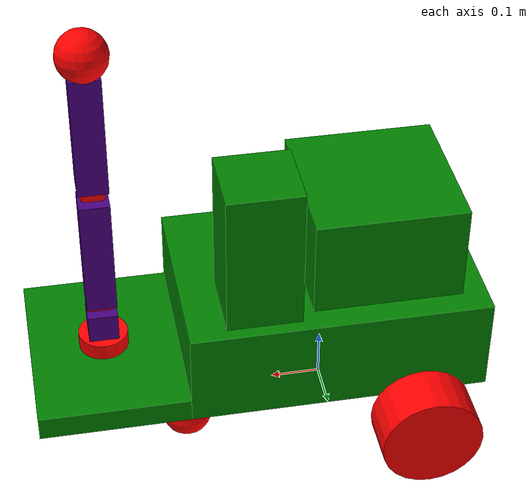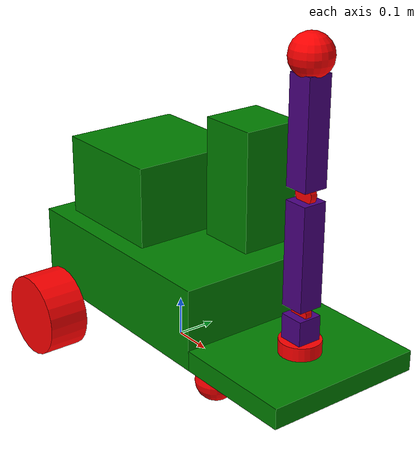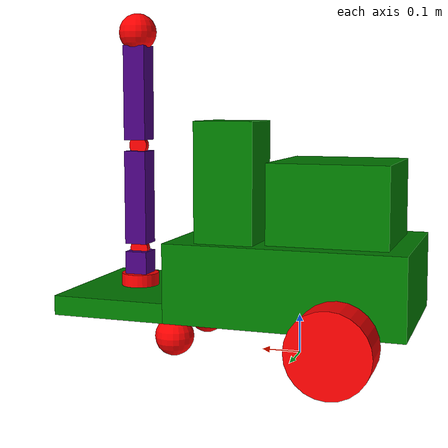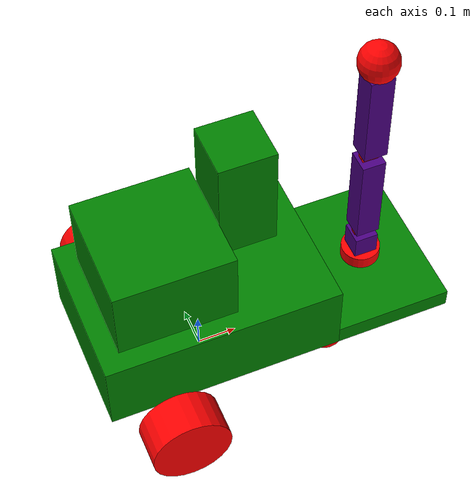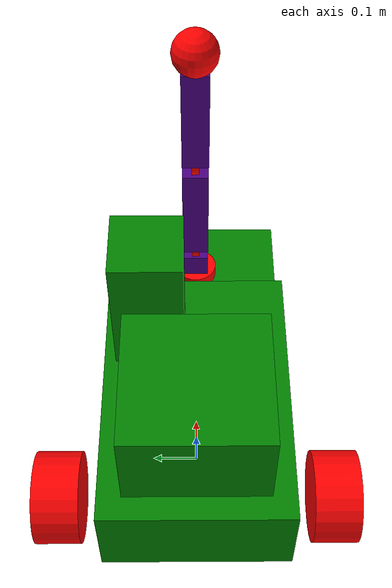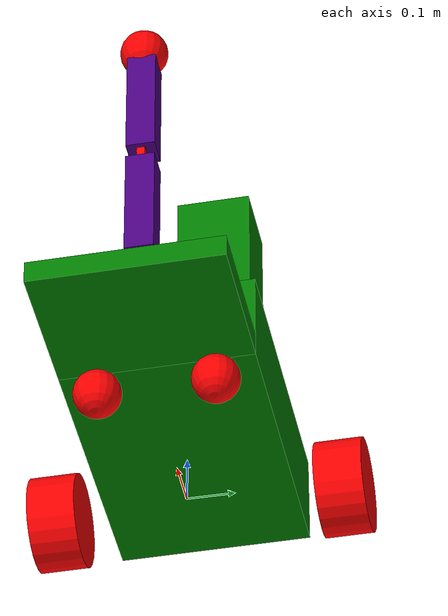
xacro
<?xml version="1.0"?>

<robot name="unipolito4" xmlns:xacro="http://ros.org/wiki/xacro">

    <xacro:arg name="is_ignition" default="true"/>

    <!-- Include Gazebo Parameters-->
    <xacro:include filename="$(find unipolitov4_description)/urdf/unipolitov4_gazebo.xacro" />

    <!-- ROS 2 Control-->
    <xacro:include filename="$(find unipolitov4_description)/urdf/unipolitov4_ros2_control.xacro" />

<!-- This is the second version of the model for the simulation of
     the UNIPOLITO V4 - Now including collisions and innertia! - Charly -->

    <!-- wheels properties-->
    <xacro:property name="wheel_radius" value="0.1" />
    <xacro:property name="wheel_length" value="0.1"/>

    <!-- Aarm base properties-->
    <xacro:property name="arm_base_x" value="0.3"/>
    <xacro:property name="arm_base_height" value="0.05"/>

    <!-- base link properties-->
    <xacro:property name="base_link_x" value="0.6"/>
    <xacro:property name="base_link_height" value="0.2"/>
    <xacro:property name="base_link_y" value="0.4"/>

    <!-- Tower link properties-->
     <xacro:property name="tower_link_x" value="0.15"/>
     <xacro:property name="tower_link_length" value="0.3"/>

     <!-- drone zone link properties-->
     <xacro:property name="drone_zone_link_x" value="0.2"/>
     <xacro:property name="drone_zone_link_x" value="0.3"/>
     <xacro:property name="drone_zone_link_length" value="0.2"/>

    <!-- revolute link 1 properties-->
    <xacro:property name="revolute_link1_length" value="0.1"/>

    <!-- Arm link1 properties -->
     <xacro:property name="arm_link1_dimention" value="0.06"/>

     <!-- Arm link2 properties -->
     <xacro:property name="arm_link2_x" value="0.06"/>
     <xacro:property name="arm_link2_z" value="0.06"/>
     <xacro:property name="arm_link2_y" value="0.25"/>

     <!-- revolute link 2 & 3 properties-->
    <xacro:property name="revolute_link2_length" value="0.05"/>

    <!-- Casther wheels properties-->
     <xacro:property name="casther_radius" value="${wheel_radius/2}"/>

    <!-- Materials definition-->
    <material name="green">
        <color rgba="0 0.5 0 1"/>
    </material>

    <material name="blue">
        <color rgba="0 0 1 1"/>
    </material>

    <material name="red">
        <color rgba="1 0 0 1"/>
    </material>

    <material name="purple">
        <color rgba="0.29 0.0 0.51 1.0"/>
    </material>
    <!-- Materials definition-->

    <link name="base_footprint"/>

    <joint name="base_footprint_joint" type="fixed">
        <parent link="base_footprint"/>
        <child link="base_link"/>
        <origin xyz="0 0 0.1" rpy="0 0 0"/>
    </joint>

    <!-- Base link -->

    <link name="base_link">
        <inertial>
            <origin xyz="0 0 0.1" rpy="0 0 0" />
            <mass value="2.0"/> <inertia ixx="0.03" ixy="0" ixz="0" iyy="0.07" iyz="0" izz="0.09" />
        </inertial>
        <visual>
            <geometry>
                <box size="${base_link_x} ${base_link_y} ${base_link_height}" />
            </geometry>
            <origin xyz="0 0 0.1" rpy="0 0 0"/>
            <material name="green"/>
        </visual>
        <collision>
            <geometry>
                <box size="${base_link_x} ${base_link_y} ${base_link_height}" />
            </geometry>
            <origin xyz="0 0 0.1" rpy="0 0 0"/>
        </collision>
    </link>

    <!-- Tower link-->
     <link name="tower_link">
        <inertial>
        <origin xyz="0 0 0.04" rpy="0.0 0.25 0.3" />
        <mass value="0.0001"/>
        <inertia ixx="0.00001" ixy="0.0" ixz="0.0"
                iyy="0.00001" iyz="0.0"
                izz="0.00001" />
    </inertial>
        <visual>
            <geometry>
                <box size="${tower_link_x} ${tower_link_x} ${tower_link_length}"/>
            </geometry>
            <origin xyz="0 0 ${tower_link_length/2}" rpy="0 0 0" />
            <material name="green"/>
        </visual>
        <collision>
            <geometry>
                <box size="${tower_link_x} ${tower_link_x} ${tower_link_length}"/>
            </geometry>
            <origin xyz="0 0 ${tower_link_length/2}" rpy="0 0 0" />
        </collision>
     </link>

     <!-- Drone zone link-->
      <link name="drone_zone_link">
        <inertial>
            <origin xyz="0 0 0.04" rpy="0.0 0.25 0.3" />
            <mass value="8.2573504e-01"/>
            <inertia ixx="2.2124416e-02" ixy="-1.2294101e-04" ixz="3.4938785e-04"
                    iyy="2.1193702e-02" iyz="-5.0120904e-05"
                    izz="2.0064271e-02" />
        </inertial>
        <visual>
            <geometry>
                <box size="${drone_zone_link_x} ${drone_zone_link_x} ${drone_zone_link_length}"/>
            </geometry>
            <origin xyz="0 0 ${drone_zone_link_length/2}" rpy="0 0 0" />
            <material name="green"/>
        </visual>
        <collision>
            <geometry>
                <box size="${drone_zone_link_x} ${drone_zone_link_x} ${drone_zone_link_length}"/>
            </geometry>
            <origin xyz="0 0 ${drone_zone_link_length/2}" rpy="0 0 0" />
        </collision>
     </link>

    <!-- Left wheel link-->
    <link name="left_wheel_link">
        <inertial>
    <origin xyz="0 0 0" rpy="0 0 0"/> <mass value="0.5"/>
    <inertia ixx="0.001" ixy="0" ixz="0" iyy="0.001" iyz="0" izz="0.001"/>
    </inertial>
        <visual>
            <geometry>
                <cylinder radius="${wheel_radius}" length="${wheel_length}"/>
            </geometry>
            <origin xyz="0 -${wheel_radius/2} 0" rpy="1.57 0 0"/>
            <material name="red"/>
        </visual>
        <collision>
            <geometry>
                <cylinder radius="${wheel_radius}" length="${wheel_length}"/>
            </geometry>
            <origin xyz="0 -${wheel_radius/2} 0" rpy="1.57 0 0"/>
        </collision>
    </link>

      <!-- Right wheel link-->
    <link name="right_wheel_link">
        <inertial>
    <origin xyz="0 0 0" rpy="0 0 0"/> <mass value="0.5"/>
    <inertia ixx="0.001" ixy="0" ixz="0" iyy="0.001" iyz="0" izz="0.001"/>
    </inertial>
        <visual>
            <geometry>
                <cylinder radius="${wheel_radius}" length="${wheel_length}"/>
            </geometry>
            <origin xyz="0 ${wheel_radius/2} 0" rpy="1.57 0 0"/>
            <material name="red"/>
        </visual>
        <collision>
            <geometry>
                <cylinder radius="${wheel_radius}" length="${wheel_length}"/>
            </geometry>
            <origin xyz="0 ${wheel_radius/2} 0" rpy="1.57 0 0"/>
        </collision>
    </link>

    <!-- arm base link-->
     <link name="arm_base_link">
        <inertial>
            <origin xyz="0 0 0.04" rpy="0.0 0.25 0.3" />
            <mass value="0.2"/>
            <inertia ixx="0.005354" ixy="-0.000029" ixz="0.000084"
                    iyy="0.005128" iyz="-0.000012"
                    izz="0.004855" />
        </inertial>
        <visual>
            <geometry>
                <box size="${arm_base_x} 0.4 ${arm_base_height}" />
            </geometry>
            <origin xyz="0 0 0" rpy="0 0 0"/>
            <material name="green"/>
        </visual>
        <collision>
            <geometry>
                <box size="${arm_base_x} 0.4 ${arm_base_height}" />
            </geometry>
            <origin xyz="0 0 0" rpy="0 0 0"/>
        </collision>
    </link>

    <!-- Revolute link arm 1-->
     <link name="rev_arm_link1">
        <inertial>
            <origin xyz="0 0 0.04" rpy="0.0 0.25 0.3" />
            <mass value="0.2"/>
            <inertia ixx="0.005354" ixy="-0.000029" ixz="0.000084"
                    iyy="0.005128" iyz="-0.000012"
                    izz="0.004855" />
        </inertial>
        <visual>
            <geometry>
                <cylinder radius="${revolute_link1_length/2}" length="${revolute_link1_length/3}"/>
            </geometry>
            <origin xyz="0 0 ${revolute_link1_length/6}" rpy="0 0 0"/>
            <material name="red"/>
        </visual>
        <collision>
            <geometry>
                <cylinder radius="${revolute_link1_length/2}" length="${revolute_link1_length/3}"/>
            </geometry>
            <origin xyz="0 0 ${revolute_link1_length/6}" rpy="0 0 0"/>
        </collision>
    </link>

    <!-- link arm 1-->
     <link name="arm_link1">
        <inertial>
            <origin xyz="0 0 0.04" rpy="0.0 0.25 0.3" />
           <mass value="0.2"/>
            <inertia ixx="0.005354" ixy="-0.000029" ixz="0.000084"
                    iyy="0.005128" iyz="-0.000012"
                    izz="0.004855" />
        </inertial>
        <visual>
            <geometry>
                <box size="${arm_link1_dimention} ${arm_link1_dimention} ${arm_link1_dimention}" />
            </geometry>
            <origin xyz="0 0 ${revolute_link1_length/3}" rpy="0 0 0"/>
            <material name="purple"/>
        </visual>
        <collision>
            <geometry>
                <box size="${arm_link1_dimention} ${arm_link1_dimention} ${arm_link1_dimention}" />
            </geometry>
            <origin xyz="0 0 ${revolute_link1_length/3}" rpy="0 0 0"/>
        </collision>
    </link>

    <!-- link arm 2-->
     <link name="arm_link2">
        <inertial>
            <origin xyz="0 0 0.04" rpy="0.0 0.25 0.3" />
            <mass value="0.2"/>
            <inertia ixx="0.005354" ixy="-0.000029" ixz="0.000084"
                    iyy="0.005128" iyz="-0.000012"
                    izz="0.004855" />
        </inertial>
        <visual>
            <geometry>
                <box size="${arm_link2_x} ${arm_link2_y} ${arm_link2_z}" />
            </geometry>
            <origin xyz="0 0 ${arm_link2_z+revolute_link2_length}" rpy="1.57 0 0"/>
            <material name="purple"/>
        </visual>
        <collision>
            <geometry>
                <box size="${arm_link2_x} ${arm_link2_y} ${arm_link2_z}" />
            </geometry>
            <origin xyz="0 0 ${arm_link2_z+revolute_link2_length}" rpy="1.57 0 0"/>
        </collision>
    </link>

    <!-- link arm 3-->
     <link name="arm_link3">
        <inertial>
            <origin xyz="0 0 0.04" rpy="0.0 0.25 0.3" />
            <mass value="0.2"/>
            <inertia ixx="0.005354" ixy="-0.000029" ixz="0.000084"
                    iyy="0.005128" iyz="-0.000012"
                    izz="0.004855" />
        </inertial>
        <visual>
            <geometry>
                <box size="${arm_link2_x} ${arm_link2_y} ${arm_link2_z}" />
            </geometry>
            <origin xyz="0 0 ${arm_link2_z+revolute_link2_length}" rpy="1.57 0 0"/>
            <material name="purple"/>
        </visual>
        <collision>
            <geometry>
                <box size="${arm_link2_x} ${arm_link2_y} ${arm_link2_z}" />
            </geometry>
            <origin xyz="0 0 ${arm_link2_z+revolute_link2_length}" rpy="1.57 0 0"/>
        </collision>
    </link>

    <!-- Casther wheel 1 - right-->
     <link name="casther_wheel_link1">
        <inertial>
            <origin xyz="0 0 0.04" rpy="0.0 0.25 0.3" />
            <mass value="8.2573504e-01"/>
            <inertia ixx="2.2124416e-02" ixy="-1.2294101e-04" ixz="3.4938785e-04"
                    iyy="2.1193702e-02" iyz="-5.0120904e-05"
                    izz="2.0064271e-02" />
        </inertial>
        <visual>
            <geometry>
                <sphere radius="${casther_radius}" />
            </geometry>
            <origin xyz="0 0 0" rpy="0 0 0"/>
            <material name="red"/>
        </visual>
        <collision>
            <geometry>
                <sphere radius="${casther_radius}" />
            </geometry>
            <origin xyz="0 0 0" rpy="0 0 0"/>
        </collision>
     </link>

     <!-- Casther wheel 2 - left-->
     <link name="casther_wheel_link2">
        <inertial>
            <origin xyz="0 0 0.04" rpy="0.0 0.25 0.3" />
            <mass value="8.2573504e-01"/>
            <inertia ixx="2.2124416e-02" ixy="-1.2294101e-04" ixz="3.4938785e-04"
                    iyy="2.1193702e-02" iyz="-5.0120904e-05"
                    izz="2.0064271e-02" />
        </inertial>
        <visual>
            <geometry>
                <sphere radius="${casther_radius}" />
            </geometry>
            <origin xyz="0 0 0" rpy="0 0 0"/>
            <material name="red"/>
        </visual>
        <collision>
            <geometry>
                <sphere radius="${casther_radius}" />
            </geometry>
            <origin xyz="0 0 0" rpy="0 0 0"/>
        </collision>
     </link>

     <!-- Casther wheel 3 - arm-->
     <link name="casther_wheel_link3">
        <inertial>
            <origin xyz="0 0 0.04" rpy="0.0 0.25 0.3" />
            <mass value="0.2"/>
            <inertia ixx="0.005354" ixy="-0.000029" ixz="0.000084"
                    iyy="0.005128" iyz="-0.000012"
                    izz="0.004855" />
        </inertial>
        <visual>
            <geometry>
                <sphere radius="${casther_radius}" />
            </geometry>
            <origin xyz="0 0 0" rpy="0 0 0"/>
            <material name="red"/>
        </visual>
        <collision>
            <geometry>
                <sphere radius="${casther_radius}" />
            </geometry>
            <origin xyz="0 0 0" rpy="0 0 0"/>
        </collision>
     </link>

     <!-- Revolute link arm 2-->
    <link name="rev_arm_link2">
        <inertial>
            <origin xyz="0 0 0.04" rpy="0.0 0.25 0.3" />
            <mass value="0.2"/>
            <inertia ixx="0.005354" ixy="-0.000029" ixz="0.000084"
                    iyy="0.005128" iyz="-0.000012"
                    izz="0.004855" />
        </inertial>
        <visual>
            <geometry>
                <cylinder radius="${revolute_link2_length/2}" length="${revolute_link2_length/3}"/>
            </geometry>
            <origin xyz="0 0 0" rpy="1.57 0 0"/>
            <material name="red"/>
        </visual>
        <collision>
            <geometry>
                <cylinder radius="${revolute_link2_length/2}" length="${revolute_link2_length/3}"/>
            </geometry>
            <origin xyz="0 0 0" rpy="1.57 0 0"/>
        </collision>
    </link>

    <!-- Revolute link arm 3-->
    <link name="rev_arm_link3">
        <inertial>
            <origin xyz="0 0 0.04" rpy="0.0 0.25 0.3" />
            <mass value="0.2"/>
            <inertia ixx="0.005354" ixy="-0.000029" ixz="0.000084"
                    iyy="0.005128" iyz="-0.000012"
                    izz="0.004855" />
        </inertial>
        <visual>
            <geometry>
                <cylinder radius="${revolute_link2_length/2}" length="${revolute_link2_length/3}"/>
            </geometry>
            <origin xyz="0 0 0" rpy="1.57 0 0"/>
            <material name="red"/>
        </visual>
        <collision>
            <geometry>
                <cylinder radius="${revolute_link2_length/2}" length="${revolute_link2_length/3}"/>
            </geometry>
            <origin xyz="0 0 0" rpy="1.57 0 0"/>
        </collision>
    </link>

     <!-- Left wheel joint-->
    <joint name="base_left_wheel_joint" type="continuous">
        <parent link="base_link"/>
        <child link="left_wheel_link"/>
        <origin xyz="-0.15 -0.25 0" rpy="0 0 0" />
        <axis xyz="0 1 0"/>
        <limit velocity="100.0" effort="100.0"/>
    </joint>

     <!-- Right wheel joint-->
    <joint name="base_right_wheel_joint" type="continuous">
        <parent link="base_link"/>
        <child link="right_wheel_link"/>
        <origin xyz="-0.15 0.25 0" rpy="0 0 0" />
        <axis xyz="0 1 0"/>
        <limit velocity="100" effort="100"/>
    </joint>

    <!-- arm base joint-->
    <joint name="base_arm_base_joint" type="fixed">
        <parent link="base_link"/>
        <child link="arm_base_link"/>
        <origin xyz="${(base_link_x/2)+arm_base_x/2} 0 ${arm_base_height/2}" rpy="0 0 0" />
    </joint>

    <!-- tower base joint-->
    <joint name="base_tower_joint" type="fixed">
        <parent link="base_link"/>
        <child link="tower_link"/>
        <origin xyz="${base_link_x/4} ${base_link_y/4} ${base_link_height}" rpy="0 0 0" />
    </joint>

    <!-- drone zone base joint-->
    <joint name="base_drone_zone_joint" type="fixed">
        <parent link="base_link"/>
        <child link="drone_zone_link"/>
        <origin xyz="-${base_link_x/6} 0 ${base_link_height}" rpy="0 0 0" />
    </joint>

    <!-- Revolute link arm 1-->
    <joint name="arm_base_rev_link1" type="revolute">
        <parent link="arm_base_link"/>
        <child link="rev_arm_link1"/>
        <origin xyz="0 0 ${arm_base_height/2}" rpy="0 0 0" />
        <axis xyz="0 0 1"/>
        <limit lower="-1.57" upper="1.57" velocity="100" effort="100"/>
        <dynamics damping="0.7" friction="1.0"/>
    </joint>

    <!-- arm link 1-->
    <joint name="revolute_link_arm_link1_joint" type="fixed">
        <parent link="rev_arm_link1"/>
        <child link="arm_link1"/>
        <origin xyz="0 0 ${arm_link1_dimention/2}" rpy="0 0 0" />
    </joint>

     <!-- arm link 2-->
    <joint name="revolute_link_arm_link2_joint" type="fixed">
        <parent link="rev_arm_link2"/>
        <child link="arm_link2"/>
        <origin xyz="0 0 ${arm_link2_z/2}" rpy="0 0 0" />
    </joint>

    <!-- arm link 3-->
    <joint name="revolute_link_arm_link3_joint" type="fixed">
        <parent link="rev_arm_link3"/>
        <child link="arm_link3"/>
        <origin xyz="0 0 ${arm_link2_z/2}" rpy="0 0 0" />
    </joint>

    <!-- Revolute link arm 2-->
    <joint name="arm_base_rev_link2" type="revolute">
        <parent link="arm_link1"/>
        <child link="rev_arm_link2"/>
        <origin xyz="0 0 ${arm_link1_dimention+0.01}" rpy="0 0 0" />
        <axis xyz="0 1 0"/>
        <limit lower="-1" upper="1.57" velocity="100" effort="100"/>
        <dynamics damping="0.7" friction="1.0"/>
    </joint>

    <!-- Revolute link arm 3-->
    <joint name="arm_base_rev_link3" type="revolute">
        <parent link="arm_link2"/>
        <child link="rev_arm_link3"/>
        <origin xyz="0 0 0.25" rpy="0 0 0" />
        <axis xyz="0 1 0"/>
        <limit lower="-1.57" upper="1.57" velocity="100" effort="100"/>
        <dynamics damping="0.7" friction="1.0"/>
    </joint>

    <!-- casther wheel joint 1 - right-->
     <joint name="base_casther_wheel_joint1" type="fixed">
        <parent link="base_link" />
        <child link="casther_wheel_link1"/>
        <origin xyz="${base_link_x/2} -${base_link_y/2-0.08} -${base_link_height/2-casther_radius}" rpy="0 0 0" />
     </joint>

     <!-- casther wheel joint 2 - left -->
     <joint name="base_casther_wheel_joint2" type="fixed">
        <parent link="base_link" />
        <child link="casther_wheel_link2"/>
        <origin xyz="${base_link_x/2} ${base_link_y/2-0.08} -${base_link_height/2-casther_radius}" rpy="0 0 0" />
     </joint>

     <!-- casther wheel joint 3 - arm -->
     <joint name="arm_casther_wheel_joint3" type="fixed">
        <parent link="arm_link3" />
        <child link="casther_wheel_link3"/>
        <origin xyz="0 0 ${arm_link2_z*2+0.15}" rpy="0 0 0" />
     </joint>
</robot>
